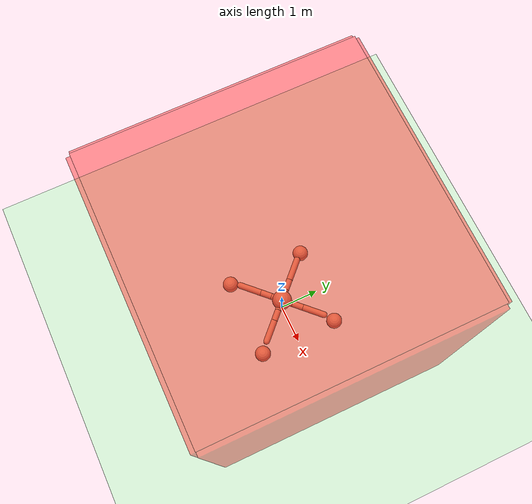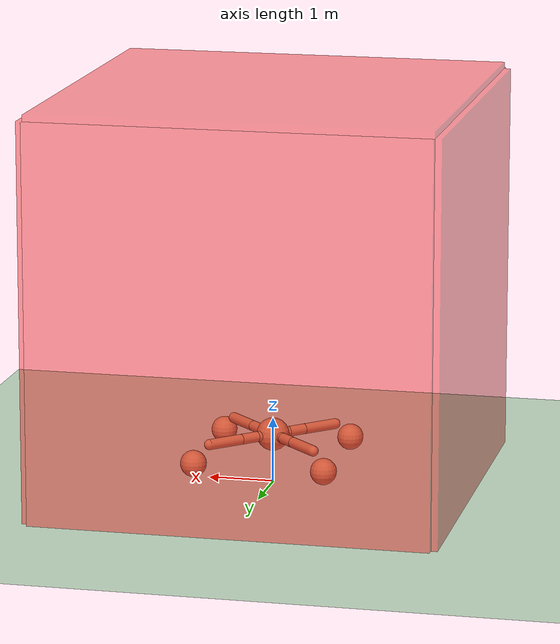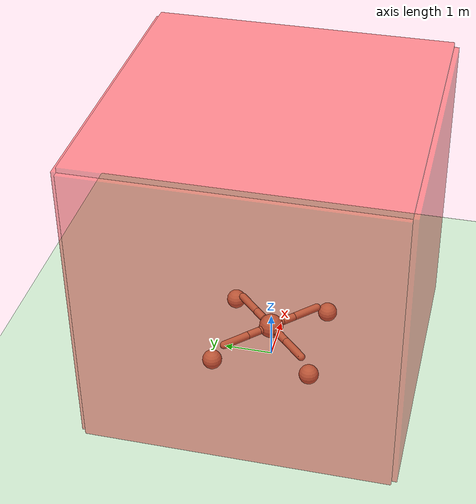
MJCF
<mujoco model="ant">
  <compiler angle="degree" coordinate="local" inertiafromgeom="true"/>
  <option integrator="RK4" timestep="0.01"/>
  <custom>
    <numeric data="0.0 0.0 0.55 1.0 0.0 0.0 0.0 0.0 1.0 0.0 -1.0 0.0 -1.0 0.0 1.0" name="init_qpos"/>
  </custom>
  <default>
    <joint armature="1" damping="1" limited="true"/>
    <geom conaffinity="0" condim="3" density="5.0" friction="1 0.5 0.5" margin="0.01" rgba="0.8 0.6 0.4 1"/>
  </default>
  <asset>
    <texture builtin="gradient" height="100" rgb1="1 1 1" rgb2="0 0 0" type="skybox" width="100"/>
    <texture builtin="flat" height="1278" mark="cross" markrgb="1 1 1" name="texgeom" random="0.01" rgb1="0.8 0.6 0.4" rgb2="0.8 0.6 0.4" type="cube" width="127"/>
    <texture builtin="checker" height="100" name="texplane" rgb1="0 0 0" rgb2="0.8 0.8 0.8" type="2d" width="100"/>
    <material name="MatPlane" reflectance="0.5" shininess="1" specular="1" texrepeat="60 60" texture="texplane"/>
    <material name="geom" texture="texgeom" texuniform="true"/>
  </asset>
  <worldbody>
    <light cutoff="100" diffuse="1 1 1" dir="-0 0 -1.3" directional="true" exponent="1" pos="0 0 1.3" specular=".1 .1 .1"/>
    <geom conaffinity="1" condim="3" material="MatPlane" name="floor" pos="0 0 0" rgba="0.8 0.9 0.8 1" size="40 40 40" type="plane"/>
    <body name="torso" pos="0 0 0.75">
      <camera name="track" mode="trackcom" pos="0 -3 0.3" xyaxes="1 0 0 0 0 1"/>
      <camera name="first_person" mode="fixed" pos="0 0 0" axisangle="1 0 0 90"/>
      <geom name="torso_geom" pos="0 0 0" size="0.25" type="sphere"/>
      <joint armature="0" damping="0" limited="false" margin="0.01" name="root" pos="0 0 0" type="free"/>
      <body name="front_left_leg" pos="0 0 0">
        <geom fromto="0.0 0.0 0.0 0.2 0.2 0.0" name="aux_1_geom" size="0.08" type="capsule"/>
        <body name="aux_1" pos="0.2 0.2 0">
          <joint axis="0 0 1" name="hip_1" pos="0.0 0.0 0.0" range="-30 30" type="hinge"/>
          <geom fromto="0.0 0.0 0.0 0.2 0.2 0.0" name="left_leg_geom" size="0.08" type="capsule"/>
          <body pos="0.2 0.2 0">
            <joint axis="-1 1 0" name="ankle_1" pos="0.0 0.0 0.0" range="30 70" type="hinge"/>
            <geom fromto="0.0 0.0 0.0 0.4 0.4 0.0" name="left_ankle_geom" size="0.08" type="capsule"/>
          </body>
        </body>
      </body>
      <body name="front_right_leg" pos="0 0 0">
        <geom fromto="0.0 0.0 0.0 -0.2 0.2 0.0" name="aux_2_geom" size="0.08" type="capsule"/>
        <body name="aux_2" pos="-0.2 0.2 0">
          <joint axis="0 0 1" name="hip_2" pos="0.0 0.0 0.0" range="-30 30" type="hinge"/>
          <geom fromto="0.0 0.0 0.0 -0.2 0.2 0.0" name="right_leg_geom" size="0.08" type="capsule"/>
          <body pos="-0.2 0.2 0">
            <joint axis="1 1 0" name="ankle_2" pos="0.0 0.0 0.0" range="-70 -30" type="hinge"/>
            <geom fromto="0.0 0.0 0.0 -0.4 0.4 0.0" name="right_ankle_geom" size="0.08" type="capsule"/>
          </body>
        </body>
      </body>
      <body name="back_leg" pos="0 0 0">
        <geom fromto="0.0 0.0 0.0 -0.2 -0.2 0.0" name="aux_3_geom" size="0.08" type="capsule"/>
        <body name="aux_3" pos="-0.2 -0.2 0">
          <joint axis="0 0 1" name="hip_3" pos="0.0 0.0 0.0" range="-30 30" type="hinge"/>
          <geom fromto="0.0 0.0 0.0 -0.2 -0.2 0.0" name="back_leg_geom" size="0.08" type="capsule"/>
          <body pos="-0.2 -0.2 0">
            <joint axis="-1 1 0" name="ankle_3" pos="0.0 0.0 0.0" range="-70 -30" type="hinge"/>
            <geom fromto="0.0 0.0 0.0 -0.4 -0.4 0.0" name="third_ankle_geom" size="0.08" type="capsule"/>
          </body>
        </body>
      </body>
      <body name="right_back_leg" pos="0 0 0">
        <geom fromto="0.0 0.0 0.0 0.2 -0.2 0.0" name="aux_4_geom" size="0.08" type="capsule"/>
        <body name="aux_4" pos="0.2 -0.2 0">
          <joint axis="0 0 1" name="hip_4" pos="0.0 0.0 0.0" range="-30 30" type="hinge"/>
          <geom fromto="0.0 0.0 0.0 0.2 -0.2 0.0" name="rightback_leg_geom" size="0.08" type="capsule"/>
          <body pos="0.2 -0.2 0">
            <joint axis="1 1 0" name="ankle_4" pos="0.0 0.0 0.0" range="30 70" type="hinge"/>
            <geom fromto="0.0 0.0 0.0 0.4 -0.4 0.0" name="fourth_ankle_geom" size="0.08" type="capsule"/>
          </body>
        </body>
      </body>
    </body>
    <geom conaffinity="1" condim="3" material="MatPlane" name="wall1" pos="3 0 3"  rgba="1 0 0 0.4" size="0.1 3 3" type="box"/>
    <geom conaffinity="1" condim="3" material="MatPlane" name="wall2" pos="-3 0 3" rgba="1 0 0 0.4" size="0.1 3 3" type="box"/>
    <geom conaffinity="1" condim="3" material="MatPlane" name="wall3" pos="0 3 3"  rgba="1 0 0 0.4" size="3 0.1 3" type="box"/>
    <geom conaffinity="1" condim="3" material="MatPlane" name="wall4" pos="0 -3 3" rgba="1 0 0 0.4" size="3 0.1 3" type="box"/>
    <geom conaffinity="1" condim="3" material="MatPlane" name="wall5" pos="0 0 6"  rgba="1 0 0 0.4" size="3 3 0.1" type="box"/>
    <body name="doot1" pos="0 0 0.5">
      <joint armature="0" damping="0" limited="false" margin="0.01" name="ballz1" pos="0 0 0" type="free"/>
      <geom name="doot_geom1" conaffinity="1" pos="1 1 0" size="0.2" type="sphere"/>
    </body>
    <body name="doot2" pos="0 0 0.5">
      <joint armature="0" damping="0" limited="false" margin="0.01" name="ballz2" pos="0 0 0" type="free"/>
      <geom name="doot_geom2" conaffinity="1" pos="1 -1 0" size="0.2" type="sphere"/>
    </body>
    <body name="doot3" pos="0 0 0.5">
      <joint armature="0" damping="0" limited="false" margin="0.01" name="ballz3" pos="0 0 0" type="free"/>
      <geom name="doot_geom3" conaffinity="1" pos="-1 1 0" size="0.2" type="sphere"/>
    </body>
    <body name="doot4" pos="0 0 0.5">
      <joint armature="0" damping="0" limited="false" margin="0.01" name="ballz4" pos="0 0 0" type="free"/>
      <geom name="doot_geom4" conaffinity="1" pos="-1 -1 0" size="0.2" type="sphere"/>
    </body>
  </worldbody>
  <actuator>
    <motor ctrllimited="true" ctrlrange="-1.0 1.0" joint="hip_4" gear="150"/>
    <motor ctrllimited="true" ctrlrange="-1.0 1.0" joint="ankle_4" gear="150"/>
    <motor ctrllimited="true" ctrlrange="-1.0 1.0" joint="hip_1" gear="150"/>
    <motor ctrllimited="true" ctrlrange="-1.0 1.0" joint="ankle_1" gear="150"/>
    <motor ctrllimited="true" ctrlrange="-1.0 1.0" joint="hip_2" gear="150"/>
    <motor ctrllimited="true" ctrlrange="-1.0 1.0" joint="ankle_2" gear="150"/>
    <motor ctrllimited="true" ctrlrange="-1.0 1.0" joint="hip_3" gear="150"/>
    <motor ctrllimited="true" ctrlrange="-1.0 1.0" joint="ankle_3" gear="150"/>
  </actuator>
</mujoco>
